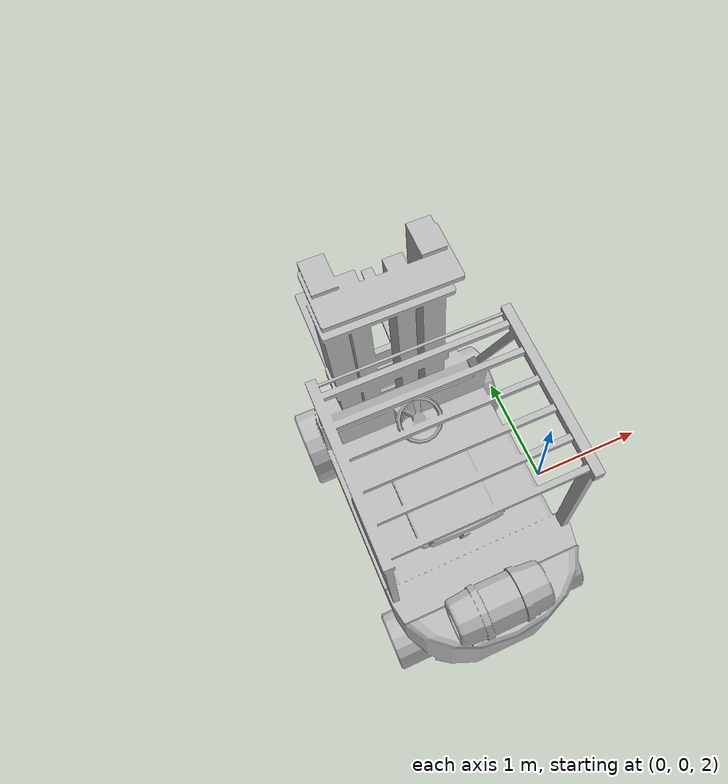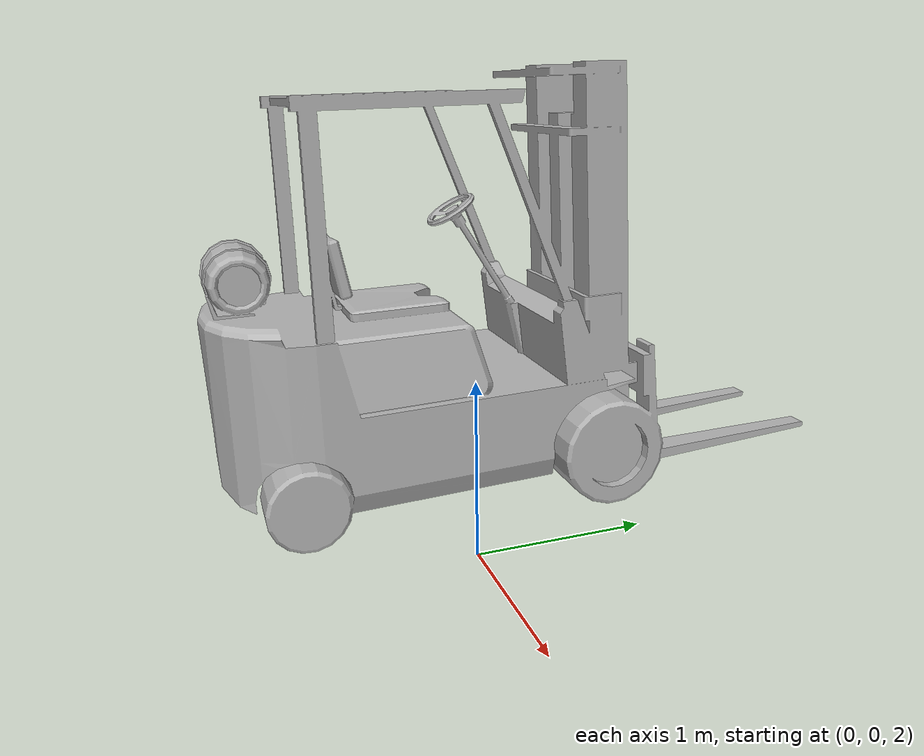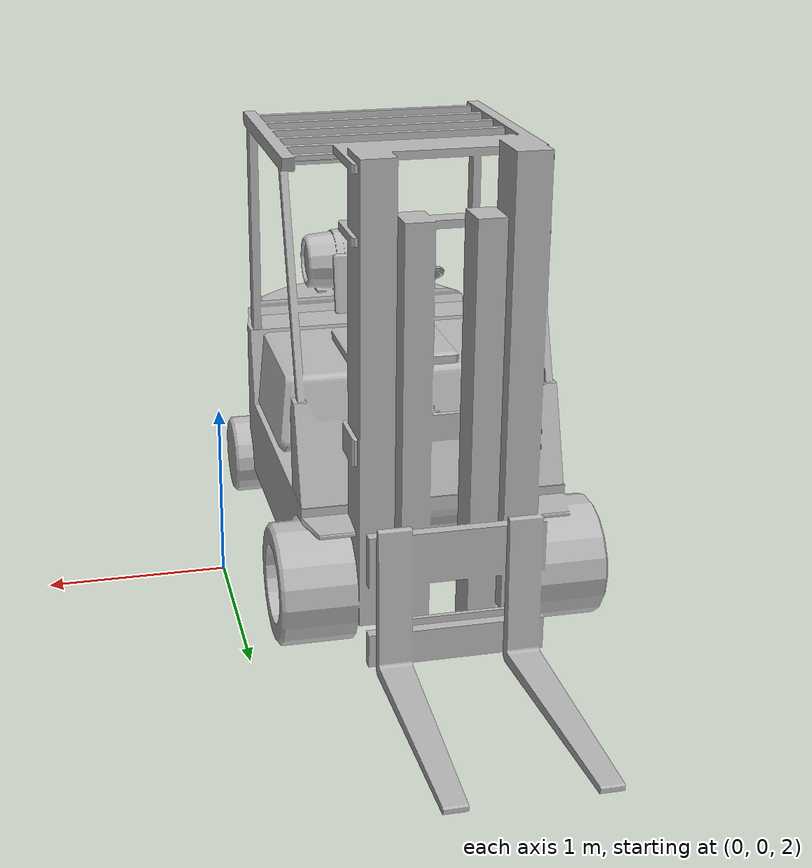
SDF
<?xml version="1.0" ?>
<sdf version="1.5">
  <model name="shelf">
    <static>false</static>
    <link name="link">
      <collision name="collision">
        <geometry>
            <mesh>
                <uri>model://Forklift1/meshes/model.dae</uri>
                <scale>1 1 1</scale>
            </mesh>
        </geometry>
        <surface>
          <friction>
            <ode>
                <mu>100</mu>
                <mu2>50</mu2>
            </ode>
          </friction>
        </surface>
      </collision>
      <visual name="visual">
        <geometry>
            <mesh>
                <uri>model://Forklift1/meshes/model.dae</uri>
                <scale>1 1 1</scale>
            </mesh>
        </geometry>
      </visual>
    </link>
  </model>
</sdf>
